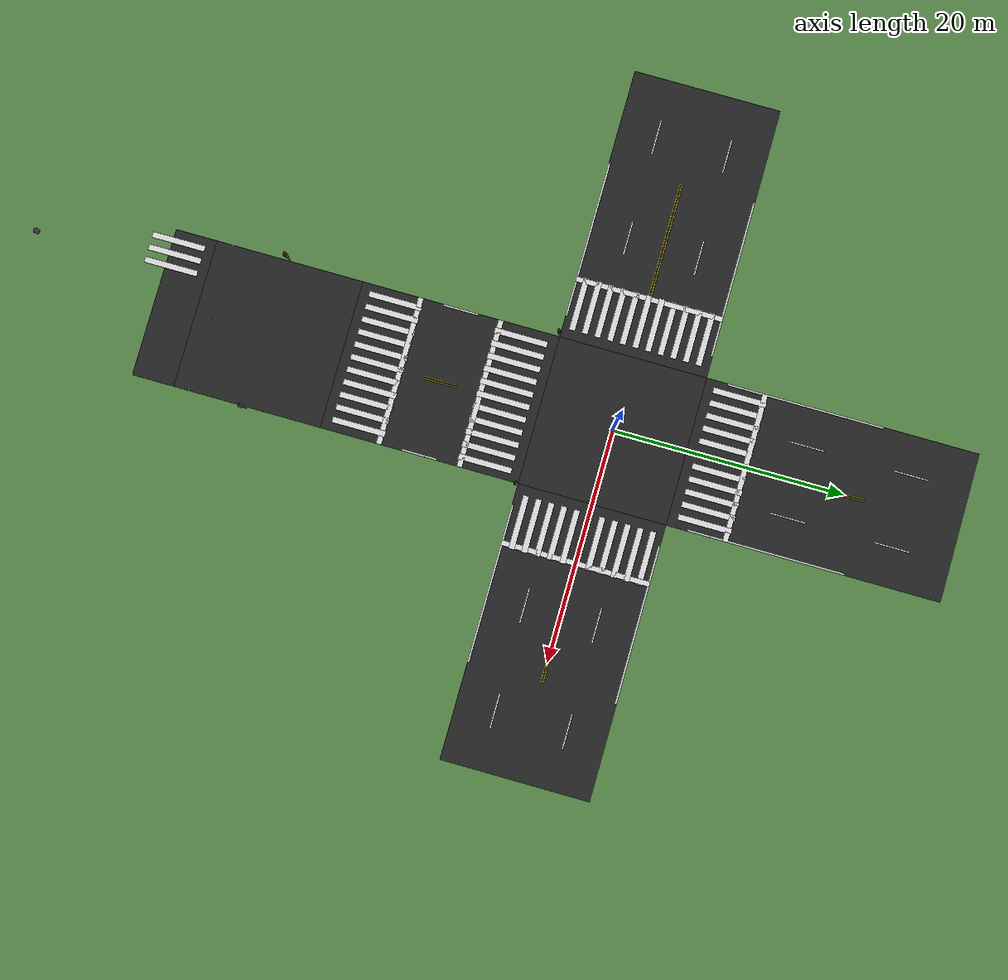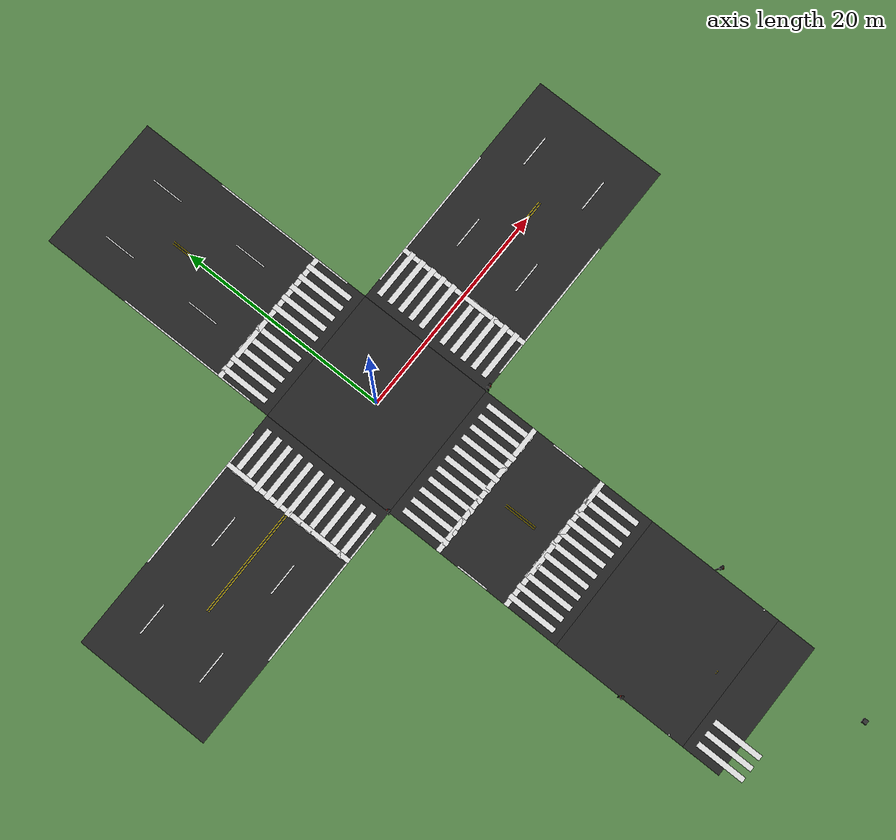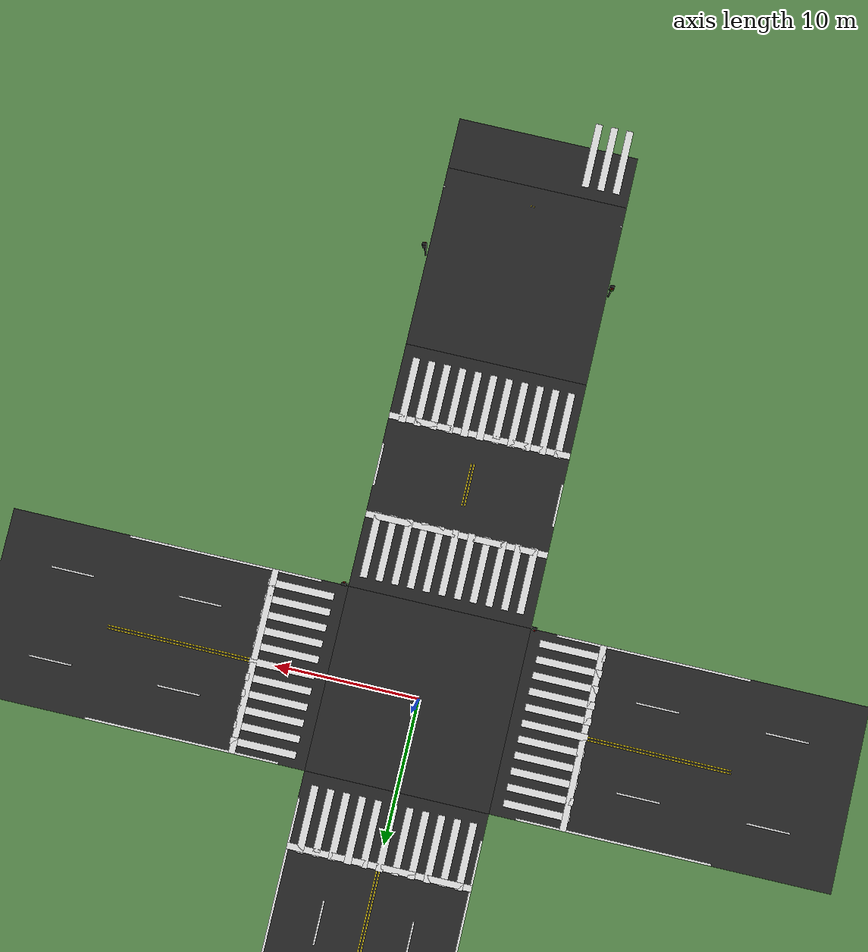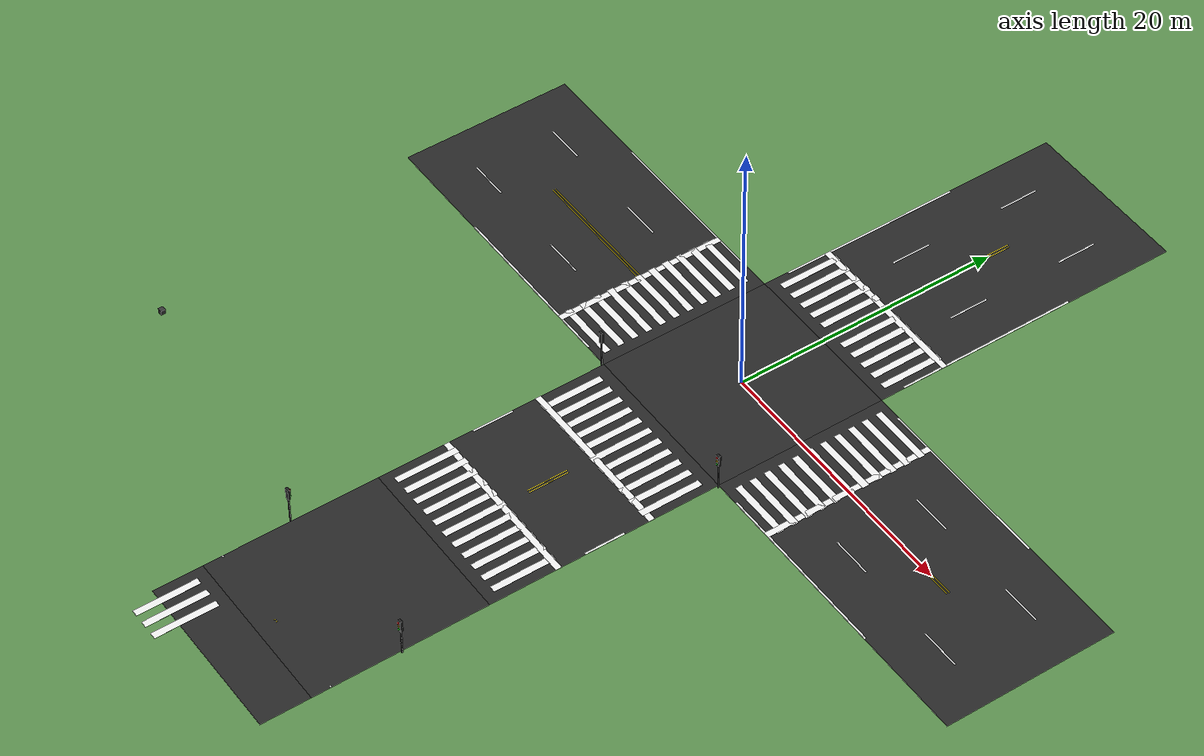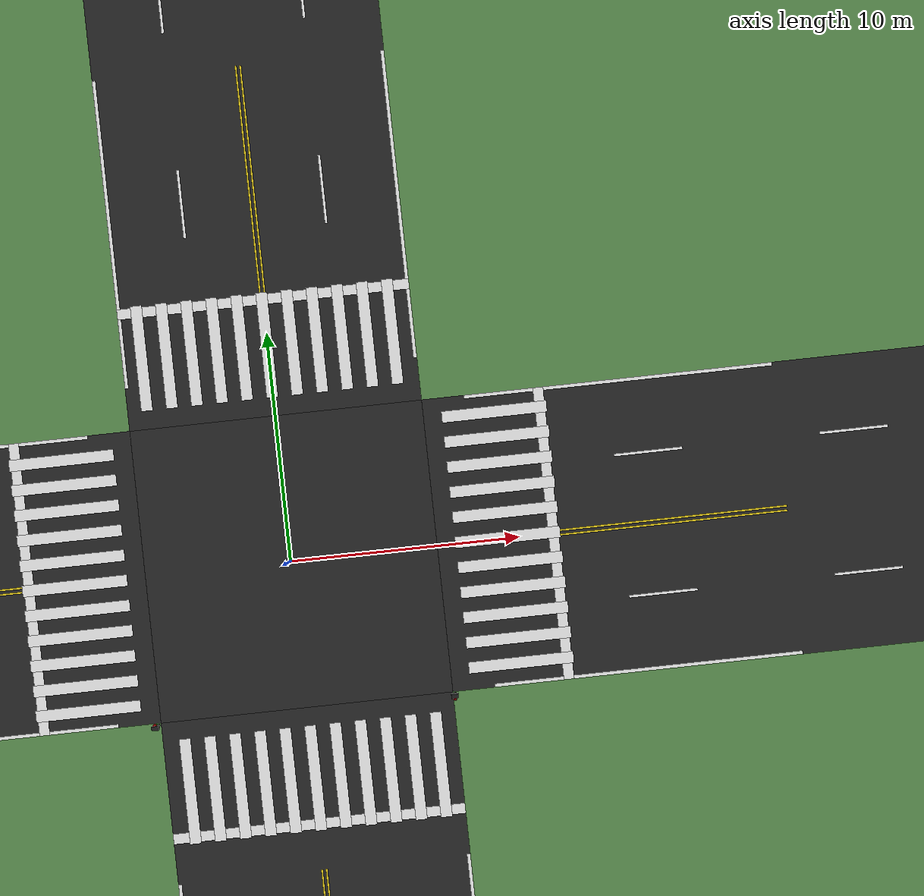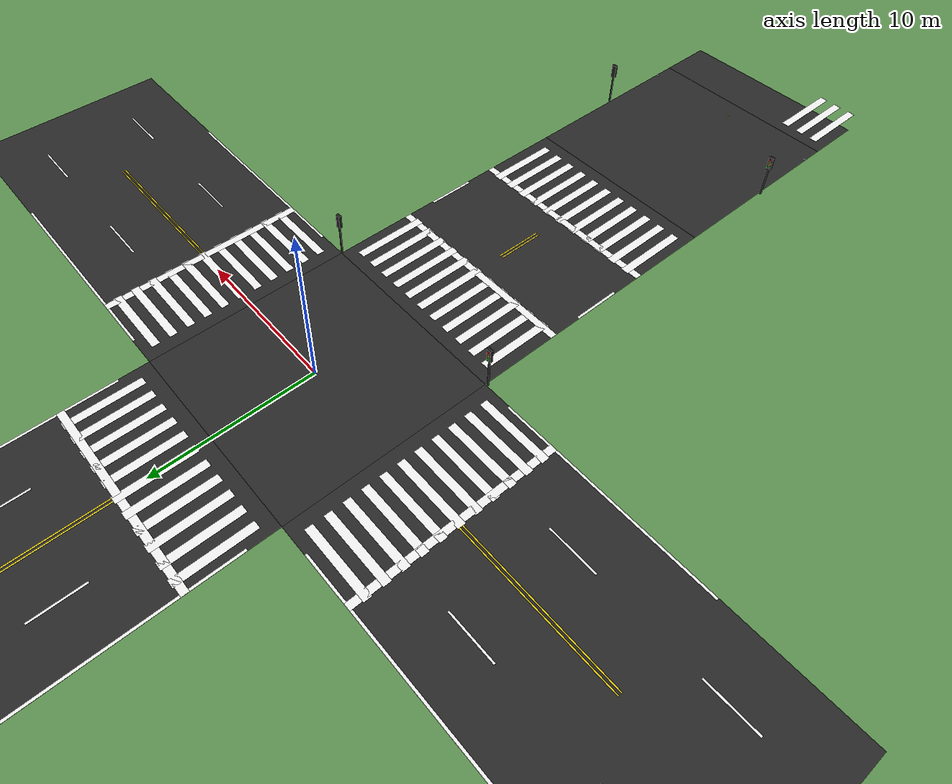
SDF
<sdf version="1.6">
 <world name="v2x_city">
  <model name="ground_plane">
   <static>true</static>
   <link name="link">
    <collision name="collision">
     <geometry><plane><normal>0 0 1</normal><size>300 300</size></plane></geometry>
     <surface><friction><ode><mu>100</mu><mu2>50</mu2></ode></friction></surface>
    </collision>
    <visual name="visual">
     <geometry><plane><normal>0 0 1</normal><size>300 300</size></plane></geometry>
     <material><ambient>0.35 0.55 0.3 1</ambient><diffuse>0.35 0.55 0.3 1</diffuse></material>
    </visual>
   </link>
  </model>
  <model name="road_NS-north">
   <static>true</static>
   <link name="link">
    <pose>0 18.2 0.02 0 0 1.5708</pose>
    <collision name="c">
     <geometry><box><size>23.6 12.8 0.02</size></box></geometry>
     <surface><friction><ode><mu>100</mu><mu2>50</mu2></ode></friction></surface>
    </collision>
    <visual name="v">
     <geometry><box><size>23.6 12.8 0.02</size></box></geometry>
     <material><ambient>0.15 0.15 0.15 1</ambient><diffuse>0.15 0.15 0.15 1</diffuse></material>
    </visual>
   </link>
  </model>
  <model name="median_NS-north_p">
   <static>true</static>
   <link name="link">
    <pose>-0.1 15 0.032 0 0 1.5708</pose>
    <visual name="v">
     <geometry><box><size>13.5 0.08 0.004</size></box></geometry>
     <material><ambient>0.9 0.8 0.1 1</ambient><diffuse>0.9 0.8 0.1 1</diffuse></material>
    </visual>
   </link>
  </model>
  <model name="median_NS-north_m">
   <static>true</static>
   <link name="link">
    <pose>0.1 15 0.032 0 0 1.5708</pose>
    <visual name="v">
     <geometry><box><size>13.5 0.08 0.004</size></box></geometry>
     <material><ambient>0.9 0.8 0.1 1</ambient><diffuse>0.9 0.8 0.1 1</diffuse></material>
    </visual>
   </link>
  </model>
  <model name="edge_NS-north_p">
   <static>true</static>
   <link name="link">
    <pose>-6.325 15 0.032 0 0 1.5708</pose>
    <visual name="v">
     <geometry><box><size>13.5 0.15 0.004</size></box></geometry>
     <material><ambient>0.92 0.92 0.92 1</ambient><diffuse>0.92 0.92 0.92 1</diffuse></material>
    </visual>
   </link>
  </model>
  <model name="edge_NS-north_m">
   <static>true</static>
   <link name="link">
    <pose>6.325 15 0.032 0 0 1.5708</pose>
    <visual name="v">
     <geometry><box><size>13.5 0.15 0.004</size></box></geometry>
     <material><ambient>0.92 0.92 0.92 1</ambient><diffuse>0.92 0.92 0.92 1</diffuse></material>
    </visual>
   </link>
  </model>
  <model name="dash_NS-north_1_p_0">
   <static>true</static>
   <link name="link">
    <pose>-3.1 16 0.032 0 0 1.5708</pose>
    <visual name="v">
     <geometry><box><size>3 0.12 0.004</size></box></geometry>
     <material><ambient>0.92 0.92 0.92 1</ambient><diffuse>0.92 0.92 0.92 1</diffuse></material>
    </visual>
   </link>
  </model>
  <model name="dash_NS-north_1_p_1">
   <static>true</static>
   <link name="link">
    <pose>-3.1 25 0.032 0 0 1.5708</pose>
    <visual name="v">
     <geometry><box><size>3 0.12 0.004</size></box></geometry>
     <material><ambient>0.92 0.92 0.92 1</ambient><diffuse>0.92 0.92 0.92 1</diffuse></material>
    </visual>
   </link>
  </model>
  <model name="dash_NS-north_1_m_0">
   <static>true</static>
   <link name="link">
    <pose>3.1 16 0.032 0 0 1.5708</pose>
    <visual name="v">
     <geometry><box><size>3 0.12 0.004</size></box></geometry>
     <material><ambient>0.92 0.92 0.92 1</ambient><diffuse>0.92 0.92 0.92 1</diffuse></material>
    </visual>
   </link>
  </model>
  <model name="dash_NS-north_1_m_1">
   <static>true</static>
   <link name="link">
    <pose>3.1 25 0.032 0 0 1.5708</pose>
    <visual name="v">
     <geometry><box><size>3 0.12 0.004</size></box></geometry>
     <material><ambient>0.92 0.92 0.92 1</ambient><diffuse>0.92 0.92 0.92 1</diffuse></material>
    </visual>
   </link>
  </model>
  <model name="road_NS-main">
   <static>true</static>
   <link name="link">
    <pose>0 -15 0.02 0 0 -1.5708</pose>
    <collision name="c">
     <geometry><box><size>17.2 12.8 0.02</size></box></geometry>
     <surface><friction><ode><mu>100</mu><mu2>50</mu2></ode></friction></surface>
    </collision>
    <visual name="v">
     <geometry><box><size>17.2 12.8 0.02</size></box></geometry>
     <material><ambient>0.15 0.15 0.15 1</ambient><diffuse>0.15 0.15 0.15 1</diffuse></material>
    </visual>
   </link>
  </model>
  <model name="median_NS-main_p">
   <static>true</static>
   <link name="link">
    <pose>0.1 -15 0.032 0 0 -1.5708</pose>
    <visual name="v">
     <geometry><box><size>3 0.08 0.004</size></box></geometry>
     <material><ambient>0.9 0.8 0.1 1</ambient><diffuse>0.9 0.8 0.1 1</diffuse></material>
    </visual>
   </link>
  </model>
  <model name="median_NS-main_m">
   <static>true</static>
   <link name="link">
    <pose>-0.1 -15 0.032 0 0 -1.5708</pose>
    <visual name="v">
     <geometry><box><size>3 0.08 0.004</size></box></geometry>
     <material><ambient>0.9 0.8 0.1 1</ambient><diffuse>0.9 0.8 0.1 1</diffuse></material>
    </visual>
   </link>
  </model>
  <model name="edge_NS-main_p">
   <static>true</static>
   <link name="link">
    <pose>6.325 -15 0.032 0 0 -1.5708</pose>
    <visual name="v">
     <geometry><box><size>3 0.15 0.004</size></box></geometry>
     <material><ambient>0.92 0.92 0.92 1</ambient><diffuse>0.92 0.92 0.92 1</diffuse></material>
    </visual>
   </link>
  </model>
  <model name="edge_NS-main_m">
   <static>true</static>
   <link name="link">
    <pose>-6.325 -15 0.032 0 0 -1.5708</pose>
    <visual name="v">
     <geometry><box><size>3 0.15 0.004</size></box></geometry>
     <material><ambient>0.92 0.92 0.92 1</ambient><diffuse>0.92 0.92 0.92 1</diffuse></material>
    </visual>
   </link>
  </model>
  <model name="road_NS-school">
   <static>true</static>
   <link name="link">
    <pose>0 -38.2 0.02 0 0 -1.5708</pose>
    <collision name="c">
     <geometry><box><size>3.6 12.8 0.02</size></box></geometry>
     <surface><friction><ode><mu>100</mu><mu2>50</mu2></ode></friction></surface>
    </collision>
    <visual name="v">
     <geometry><box><size>3.6 12.8 0.02</size></box></geometry>
     <material><ambient>0.15 0.15 0.15 1</ambient><diffuse>0.15 0.15 0.15 1</diffuse></material>
    </visual>
   </link>
  </model>
  <model name="median_NS-school_p">
   <static>true</static>
   <link name="link">
    <pose>0.1 -35 0.032 0 0 -1.5708</pose>
    <visual name="v">
     <geometry><box><size>0.1 0.08 0.004</size></box></geometry>
     <material><ambient>0.9 0.8 0.1 1</ambient><diffuse>0.9 0.8 0.1 1</diffuse></material>
    </visual>
   </link>
  </model>
  <model name="median_NS-school_m">
   <static>true</static>
   <link name="link">
    <pose>-0.1 -35 0.032 0 0 -1.5708</pose>
    <visual name="v">
     <geometry><box><size>0.1 0.08 0.004</size></box></geometry>
     <material><ambient>0.9 0.8 0.1 1</ambient><diffuse>0.9 0.8 0.1 1</diffuse></material>
    </visual>
   </link>
  </model>
  <model name="edge_NS-school_p">
   <static>true</static>
   <link name="link">
    <pose>6.325 -35 0.032 0 0 -1.5708</pose>
    <visual name="v">
     <geometry><box><size>0.1 0.15 0.004</size></box></geometry>
     <material><ambient>0.92 0.92 0.92 1</ambient><diffuse>0.92 0.92 0.92 1</diffuse></material>
    </visual>
   </link>
  </model>
  <model name="edge_NS-school_m">
   <static>true</static>
   <link name="link">
    <pose>-6.325 -35 0.032 0 0 -1.5708</pose>
    <visual name="v">
     <geometry><box><size>0.1 0.15 0.004</size></box></geometry>
     <material><ambient>0.92 0.92 0.92 1</ambient><diffuse>0.92 0.92 0.92 1</diffuse></material>
    </visual>
   </link>
  </model>
  <model name="road_EW-east">
   <static>true</static>
   <link name="link">
    <pose>18.2 0 0.02 0 0 0</pose>
    <collision name="c">
     <geometry><box><size>23.6 12.8 0.02</size></box></geometry>
     <surface><friction><ode><mu>100</mu><mu2>50</mu2></ode></friction></surface>
    </collision>
    <visual name="v">
     <geometry><box><size>23.6 12.8 0.02</size></box></geometry>
     <material><ambient>0.15 0.15 0.15 1</ambient><diffuse>0.15 0.15 0.15 1</diffuse></material>
    </visual>
   </link>
  </model>
  <model name="median_EW-east_p">
   <static>true</static>
   <link name="link">
    <pose>15 0.1 0.032 0 0 0</pose>
    <visual name="v">
     <geometry><box><size>13.5 0.08 0.004</size></box></geometry>
     <material><ambient>0.9 0.8 0.1 1</ambient><diffuse>0.9 0.8 0.1 1</diffuse></material>
    </visual>
   </link>
  </model>
  <model name="median_EW-east_m">
   <static>true</static>
   <link name="link">
    <pose>15 -0.1 0.032 0 0 0</pose>
    <visual name="v">
     <geometry><box><size>13.5 0.08 0.004</size></box></geometry>
     <material><ambient>0.9 0.8 0.1 1</ambient><diffuse>0.9 0.8 0.1 1</diffuse></material>
    </visual>
   </link>
  </model>
  <model name="edge_EW-east_p">
   <static>true</static>
   <link name="link">
    <pose>15 6.325 0.032 0 0 0</pose>
    <visual name="v">
     <geometry><box><size>13.5 0.15 0.004</size></box></geometry>
     <material><ambient>0.92 0.92 0.92 1</ambient><diffuse>0.92 0.92 0.92 1</diffuse></material>
    </visual>
   </link>
  </model>
  <model name="edge_EW-east_m">
   <static>true</static>
   <link name="link">
    <pose>15 -6.325 0.032 0 0 0</pose>
    <visual name="v">
     <geometry><box><size>13.5 0.15 0.004</size></box></geometry>
     <material><ambient>0.92 0.92 0.92 1</ambient><diffuse>0.92 0.92 0.92 1</diffuse></material>
    </visual>
   </link>
  </model>
  <model name="dash_EW-east_1_p_0">
   <static>true</static>
   <link name="link">
    <pose>16 3.1 0.032 0 0 0</pose>
    <visual name="v">
     <geometry><box><size>3 0.12 0.004</size></box></geometry>
     <material><ambient>0.92 0.92 0.92 1</ambient><diffuse>0.92 0.92 0.92 1</diffuse></material>
    </visual>
   </link>
  </model>
  <model name="dash_EW-east_1_p_1">
   <static>true</static>
   <link name="link">
    <pose>25 3.1 0.032 0 0 0</pose>
    <visual name="v">
     <geometry><box><size>3 0.12 0.004</size></box></geometry>
     <material><ambient>0.92 0.92 0.92 1</ambient><diffuse>0.92 0.92 0.92 1</diffuse></material>
    </visual>
   </link>
  </model>
  <model name="dash_EW-east_1_m_0">
   <static>true</static>
   <link name="link">
    <pose>16 -3.1 0.032 0 0 0</pose>
    <visual name="v">
     <geometry><box><size>3 0.12 0.004</size></box></geometry>
     <material><ambient>0.92 0.92 0.92 1</ambient><diffuse>0.92 0.92 0.92 1</diffuse></material>
    </visual>
   </link>
  </model>
  <model name="dash_EW-east_1_m_1">
   <static>true</static>
   <link name="link">
    <pose>25 -3.1 0.032 0 0 0</pose>
    <visual name="v">
     <geometry><box><size>3 0.12 0.004</size></box></geometry>
     <material><ambient>0.92 0.92 0.92 1</ambient><diffuse>0.92 0.92 0.92 1</diffuse></material>
    </visual>
   </link>
  </model>
  <model name="road_EW-west">
   <static>true</static>
   <link name="link">
    <pose>-18.2 0 0.02 0 0 3.1416</pose>
    <collision name="c">
     <geometry><box><size>23.6 12.8 0.02</size></box></geometry>
     <surface><friction><ode><mu>100</mu><mu2>50</mu2></ode></friction></surface>
    </collision>
    <visual name="v">
     <geometry><box><size>23.6 12.8 0.02</size></box></geometry>
     <material><ambient>0.15 0.15 0.15 1</ambient><diffuse>0.15 0.15 0.15 1</diffuse></material>
    </visual>
   </link>
  </model>
  <model name="median_EW-west_p">
   <static>true</static>
   <link name="link">
    <pose>-15 -0.1 0.032 0 0 3.1416</pose>
    <visual name="v">
     <geometry><box><size>13.5 0.08 0.004</size></box></geometry>
     <material><ambient>0.9 0.8 0.1 1</ambient><diffuse>0.9 0.8 0.1 1</diffuse></material>
    </visual>
   </link>
  </model>
  <model name="median_EW-west_m">
   <static>true</static>
   <link name="link">
    <pose>-15 0.1 0.032 0 0 3.1416</pose>
    <visual name="v">
     <geometry><box><size>13.5 0.08 0.004</size></box></geometry>
     <material><ambient>0.9 0.8 0.1 1</ambient><diffuse>0.9 0.8 0.1 1</diffuse></material>
    </visual>
   </link>
  </model>
  <model name="edge_EW-west_p">
   <static>true</static>
   <link name="link">
    <pose>-15 -6.325 0.032 0 0 3.1416</pose>
    <visual name="v">
     <geometry><box><size>13.5 0.15 0.004</size></box></geometry>
     <material><ambient>0.92 0.92 0.92 1</ambient><diffuse>0.92 0.92 0.92 1</diffuse></material>
    </visual>
   </link>
  </model>
  <model name="edge_EW-west_m">
   <static>true</static>
   <link name="link">
    <pose>-15 6.325 0.032 0 0 3.1416</pose>
    <visual name="v">
     <geometry><box><size>13.5 0.15 0.004</size></box></geometry>
     <material><ambient>0.92 0.92 0.92 1</ambient><diffuse>0.92 0.92 0.92 1</diffuse></material>
    </visual>
   </link>
  </model>
  <model name="dash_EW-west_1_p_0">
   <static>true</static>
   <link name="link">
    <pose>-16 -3.1 0.032 0 0 3.1416</pose>
    <visual name="v">
     <geometry><box><size>3 0.12 0.004</size></box></geometry>
     <material><ambient>0.92 0.92 0.92 1</ambient><diffuse>0.92 0.92 0.92 1</diffuse></material>
    </visual>
   </link>
  </model>
  <model name="dash_EW-west_1_p_1">
   <static>true</static>
   <link name="link">
    <pose>-25 -3.1 0.032 0 0 3.1416</pose>
    <visual name="v">
     <geometry><box><size>3 0.12 0.004</size></box></geometry>
     <material><ambient>0.92 0.92 0.92 1</ambient><diffuse>0.92 0.92 0.92 1</diffuse></material>
    </visual>
   </link>
  </model>
  <model name="dash_EW-west_1_m_0">
   <static>true</static>
   <link name="link">
    <pose>-16 3.1 0.032 0 0 3.1416</pose>
    <visual name="v">
     <geometry><box><size>3 0.12 0.004</size></box></geometry>
     <material><ambient>0.92 0.92 0.92 1</ambient><diffuse>0.92 0.92 0.92 1</diffuse></material>
    </visual>
   </link>
  </model>
  <model name="dash_EW-west_1_m_1">
   <static>true</static>
   <link name="link">
    <pose>-25 3.1 0.032 0 0 3.1416</pose>
    <visual name="v">
     <geometry><box><size>3 0.12 0.004</size></box></geometry>
     <material><ambient>0.92 0.92 0.92 1</ambient><diffuse>0.92 0.92 0.92 1</diffuse></material>
    </visual>
   </link>
  </model>
  <model name="junction_J1">
   <static>true</static>
   <link name="link">
    <pose>0 0 0.02 0 0 0</pose>
    <collision name="c">
     <geometry><box><size>12.8 12.8 0.02</size></box></geometry>
     <surface><friction><ode><mu>100</mu><mu2>50</mu2></ode></friction></surface>
    </collision>
    <visual name="v">
     <geometry><box><size>12.8 12.8 0.02</size></box></geometry>
     <material><ambient>0.15 0.15 0.15 1</ambient><diffuse>0.15 0.15 0.15 1</diffuse></material>
    </visual>
   </link>
  </model>
  <model name="junction_J2">
   <static>true</static>
   <link name="link">
    <pose>0 -30 0.02 0 0 0</pose>
    <collision name="c">
     <geometry><box><size>12.8 12.8 0.02</size></box></geometry>
     <surface><friction><ode><mu>100</mu><mu2>50</mu2></ode></friction></surface>
    </collision>
    <visual name="v">
     <geometry><box><size>12.8 12.8 0.02</size></box></geometry>
     <material><ambient>0.15 0.15 0.15 1</ambient><diffuse>0.15 0.15 0.15 1</diffuse></material>
    </visual>
   </link>
  </model>
  <model name="zebra_J1_NS-north_0">
   <static>true</static>
   <link name="link">
    <pose>5.45 9.5 0.034 0 0 1.5708</pose>
    <visual name="v">
     <geometry><box><size>4.6 0.5 0.004</size></box></geometry>
     <material><ambient>0.92 0.92 0.92 1</ambient><diffuse>0.92 0.92 0.92 1</diffuse></material>
    </visual>
   </link>
  </model>
  <model name="zebra_J1_NS-north_1">
   <static>true</static>
   <link name="link">
    <pose>4.35 9.5 0.034 0 0 1.5708</pose>
    <visual name="v">
     <geometry><box><size>4.6 0.5 0.004</size></box></geometry>
     <material><ambient>0.92 0.92 0.92 1</ambient><diffuse>0.92 0.92 0.92 1</diffuse></material>
    </visual>
   </link>
  </model>
  <model name="zebra_J1_NS-north_2">
   <static>true</static>
   <link name="link">
    <pose>3.25 9.5 0.034 0 0 1.5708</pose>
    <visual name="v">
     <geometry><box><size>4.6 0.5 0.004</size></box></geometry>
     <material><ambient>0.92 0.92 0.92 1</ambient><diffuse>0.92 0.92 0.92 1</diffuse></material>
    </visual>
   </link>
  </model>
  <model name="zebra_J1_NS-north_3">
   <static>true</static>
   <link name="link">
    <pose>2.15 9.5 0.034 0 0 1.5708</pose>
    <visual name="v">
     <geometry><box><size>4.6 0.5 0.004</size></box></geometry>
     <material><ambient>0.92 0.92 0.92 1</ambient><diffuse>0.92 0.92 0.92 1</diffuse></material>
    </visual>
   </link>
  </model>
  <model name="zebra_J1_NS-north_4">
   <static>true</static>
   <link name="link">
    <pose>1.05 9.5 0.034 0 0 1.5708</pose>
    <visual name="v">
     <geometry><box><size>4.6 0.5 0.004</size></box></geometry>
     <material><ambient>0.92 0.92 0.92 1</ambient><diffuse>0.92 0.92 0.92 1</diffuse></material>
    </visual>
   </link>
  </model>
  <model name="zebra_J1_NS-north_5">
   <static>true</static>
   <link name="link">
    <pose>-0.05 9.5 0.034 0 0 1.5708</pose>
    <visual name="v">
     <geometry><box><size>4.6 0.5 0.004</size></box></geometry>
     <material><ambient>0.92 0.92 0.92 1</ambient><diffuse>0.92 0.92 0.92 1</diffuse></material>
    </visual>
   </link>
  </model>
  <model name="zebra_J1_NS-north_6">
   <static>true</static>
   <link name="link">
    <pose>-1.15 9.5 0.034 0 0 1.5708</pose>
    <visual name="v">
     <geometry><box><size>4.6 0.5 0.004</size></box></geometry>
     <material><ambient>0.92 0.92 0.92 1</ambient><diffuse>0.92 0.92 0.92 1</diffuse></material>
    </visual>
   </link>
  </model>
  <model name="zebra_J1_NS-north_7">
   <static>true</static>
   <link name="link">
    <pose>-2.25 9.5 0.034 0 0 1.5708</pose>
    <visual name="v">
     <geometry><box><size>4.6 0.5 0.004</size></box></geometry>
     <material><ambient>0.92 0.92 0.92 1</ambient><diffuse>0.92 0.92 0.92 1</diffuse></material>
    </visual>
   </link>
  </model>
  <model name="zebra_J1_NS-north_8">
   <static>true</static>
   <link name="link">
    <pose>-3.35 9.5 0.034 0 0 1.5708</pose>
    <visual name="v">
     <geometry><box><size>4.6 0.5 0.004</size></box></geometry>
     <material><ambient>0.92 0.92 0.92 1</ambient><diffuse>0.92 0.92 0.92 1</diffuse></material>
    </visual>
   </link>
  </model>
  <model name="zebra_J1_NS-north_9">
   <static>true</static>
   <link name="link">
    <pose>-4.45 9.5 0.034 0 0 1.5708</pose>
    <visual name="v">
     <geometry><box><size>4.6 0.5 0.004</size></box></geometry>
     <material><ambient>0.92 0.92 0.92 1</ambient><diffuse>0.92 0.92 0.92 1</diffuse></material>
    </visual>
   </link>
  </model>
  <model name="zebra_J1_NS-north_10">
   <static>true</static>
   <link name="link">
    <pose>-5.55 9.5 0.034 0 0 1.5708</pose>
    <visual name="v">
     <geometry><box><size>4.6 0.5 0.004</size></box></geometry>
     <material><ambient>0.92 0.92 0.92 1</ambient><diffuse>0.92 0.92 0.92 1</diffuse></material>
    </visual>
   </link>
  </model>
  <model name="stopline_J1_NS-north_p">
   <static>true</static>
   <link name="link">
    <pose>-3.25 11.5 0.034 0 0 1.5708</pose>
    <visual name="v">
     <geometry><box><size>0.45 6.3 0.004</size></box></geometry>
     <material><ambient>0.92 0.92 0.92 1</ambient><diffuse>0.92 0.92 0.92 1</diffuse></material>
    </visual>
   </link>
  </model>
  <model name="stopline_J1_NS-north_m">
   <static>true</static>
   <link name="link">
    <pose>3.25 11.5 0.034 0 0 1.5708</pose>
    <visual name="v">
     <geometry><box><size>0.45 6.3 0.004</size></box></geometry>
     <material><ambient>0.92 0.92 0.92 1</ambient><diffuse>0.92 0.92 0.92 1</diffuse></material>
    </visual>
   </link>
  </model>
  <model name="zebra_J1_NS-main_0">
   <static>true</static>
   <link name="link">
    <pose>-5.45 -9.5 0.034 0 0 -1.5708</pose>
    <visual name="v">
     <geometry><box><size>4.6 0.5 0.004</size></box></geometry>
     <material><ambient>0.92 0.92 0.92 1</ambient><diffuse>0.92 0.92 0.92 1</diffuse></material>
    </visual>
   </link>
  </model>
  <model name="zebra_J1_NS-main_1">
   <static>true</static>
   <link name="link">
    <pose>-4.35 -9.5 0.034 0 0 -1.5708</pose>
    <visual name="v">
     <geometry><box><size>4.6 0.5 0.004</size></box></geometry>
     <material><ambient>0.92 0.92 0.92 1</ambient><diffuse>0.92 0.92 0.92 1</diffuse></material>
    </visual>
   </link>
  </model>
  <model name="zebra_J1_NS-main_2">
   <static>true</static>
   <link name="link">
    <pose>-3.25 -9.5 0.034 0 0 -1.5708</pose>
    <visual name="v">
     <geometry><box><size>4.6 0.5 0.004</size></box></geometry>
     <material><ambient>0.92 0.92 0.92 1</ambient><diffuse>0.92 0.92 0.92 1</diffuse></material>
    </visual>
   </link>
  </model>
  <model name="zebra_J1_NS-main_3">
   <static>true</static>
   <link name="link">
    <pose>-2.15 -9.5 0.034 0 0 -1.5708</pose>
    <visual name="v">
     <geometry><box><size>4.6 0.5 0.004</size></box></geometry>
     <material><ambient>0.92 0.92 0.92 1</ambient><diffuse>0.92 0.92 0.92 1</diffuse></material>
    </visual>
   </link>
  </model>
  <model name="zebra_J1_NS-main_4">
   <static>true</static>
   <link name="link">
    <pose>-1.05 -9.5 0.034 0 0 -1.5708</pose>
    <visual name="v">
     <geometry><box><size>4.6 0.5 0.004</size></box></geometry>
     <material><ambient>0.92 0.92 0.92 1</ambient><diffuse>0.92 0.92 0.92 1</diffuse></material>
    </visual>
   </link>
  </model>
  <model name="zebra_J1_NS-main_5">
   <static>true</static>
   <link name="link">
    <pose>0.05 -9.5 0.034 0 0 -1.5708</pose>
    <visual name="v">
     <geometry><box><size>4.6 0.5 0.004</size></box></geometry>
     <material><ambient>0.92 0.92 0.92 1</ambient><diffuse>0.92 0.92 0.92 1</diffuse></material>
    </visual>
   </link>
  </model>
  <model name="zebra_J1_NS-main_6">
   <static>true</static>
   <link name="link">
    <pose>1.15 -9.5 0.034 0 0 -1.5708</pose>
    <visual name="v">
     <geometry><box><size>4.6 0.5 0.004</size></box></geometry>
     <material><ambient>0.92 0.92 0.92 1</ambient><diffuse>0.92 0.92 0.92 1</diffuse></material>
    </visual>
   </link>
  </model>
  <model name="zebra_J1_NS-main_7">
   <static>true</static>
   <link name="link">
    <pose>2.25 -9.5 0.034 0 0 -1.5708</pose>
    <visual name="v">
     <geometry><box><size>4.6 0.5 0.004</size></box></geometry>
     <material><ambient>0.92 0.92 0.92 1</ambient><diffuse>0.92 0.92 0.92 1</diffuse></material>
    </visual>
   </link>
  </model>
  <model name="zebra_J1_NS-main_8">
   <static>true</static>
   <link name="link">
    <pose>3.35 -9.5 0.034 0 0 -1.5708</pose>
    <visual name="v">
     <geometry><box><size>4.6 0.5 0.004</size></box></geometry>
     <material><ambient>0.92 0.92 0.92 1</ambient><diffuse>0.92 0.92 0.92 1</diffuse></material>
    </visual>
   </link>
  </model>
  <model name="zebra_J1_NS-main_9">
   <static>true</static>
   <link name="link">
    <pose>4.45 -9.5 0.034 0 0 -1.5708</pose>
    <visual name="v">
     <geometry><box><size>4.6 0.5 0.004</size></box></geometry>
     <material><ambient>0.92 0.92 0.92 1</ambient><diffuse>0.92 0.92 0.92 1</diffuse></material>
    </visual>
   </link>
  </model>
  <model name="zebra_J1_NS-main_10">
   <static>true</static>
   <link name="link">
    <pose>5.55 -9.5 0.034 0 0 -1.5708</pose>
    <visual name="v">
     <geometry><box><size>4.6 0.5 0.004</size></box></geometry>
     <material><ambient>0.92 0.92 0.92 1</ambient><diffuse>0.92 0.92 0.92 1</diffuse></material>
    </visual>
   </link>
  </model>
  <model name="stopline_J1_NS-main_p">
   <static>true</static>
   <link name="link">
    <pose>3.25 -11.5 0.034 0 0 -1.5708</pose>
    <visual name="v">
     <geometry><box><size>0.45 6.3 0.004</size></box></geometry>
     <material><ambient>0.92 0.92 0.92 1</ambient><diffuse>0.92 0.92 0.92 1</diffuse></material>
    </visual>
   </link>
  </model>
  <model name="stopline_J1_NS-main_m">
   <static>true</static>
   <link name="link">
    <pose>-3.25 -11.5 0.034 0 0 -1.5708</pose>
    <visual name="v">
     <geometry><box><size>0.45 6.3 0.004</size></box></geometry>
     <material><ambient>0.92 0.92 0.92 1</ambient><diffuse>0.92 0.92 0.92 1</diffuse></material>
    </visual>
   </link>
  </model>
  <model name="zebra_J1_EW-east_0">
   <static>true</static>
   <link name="link">
    <pose>9.5 -5.45 0.034 0 0 0</pose>
    <visual name="v">
     <geometry><box><size>4.6 0.5 0.004</size></box></geometry>
     <material><ambient>0.92 0.92 0.92 1</ambient><diffuse>0.92 0.92 0.92 1</diffuse></material>
    </visual>
   </link>
  </model>
  <model name="zebra_J1_EW-east_1">
   <static>true</static>
   <link name="link">
    <pose>9.5 -4.35 0.034 0 0 0</pose>
    <visual name="v">
     <geometry><box><size>4.6 0.5 0.004</size></box></geometry>
     <material><ambient>0.92 0.92 0.92 1</ambient><diffuse>0.92 0.92 0.92 1</diffuse></material>
    </visual>
   </link>
  </model>
  <model name="zebra_J1_EW-east_2">
   <static>true</static>
   <link name="link">
    <pose>9.5 -3.25 0.034 0 0 0</pose>
    <visual name="v">
     <geometry><box><size>4.6 0.5 0.004</size></box></geometry>
     <material><ambient>0.92 0.92 0.92 1</ambient><diffuse>0.92 0.92 0.92 1</diffuse></material>
    </visual>
   </link>
  </model>
  <model name="zebra_J1_EW-east_3">
   <static>true</static>
   <link name="link">
    <pose>9.5 -2.15 0.034 0 0 0</pose>
    <visual name="v">
     <geometry><box><size>4.6 0.5 0.004</size></box></geometry>
     <material><ambient>0.92 0.92 0.92 1</ambient><diffuse>0.92 0.92 0.92 1</diffuse></material>
    </visual>
   </link>
  </model>
  <model name="zebra_J1_EW-east_4">
   <static>true</static>
   <link name="link">
    <pose>9.5 -1.05 0.034 0 0 0</pose>
    <visual name="v">
     <geometry><box><size>4.6 0.5 0.004</size></box></geometry>
     <material><ambient>0.92 0.92 0.92 1</ambient><diffuse>0.92 0.92 0.92 1</diffuse></material>
    </visual>
   </link>
  </model>
  <model name="zebra_J1_EW-east_5">
   <static>true</static>
   <link name="link">
    <pose>9.5 0.05 0.034 0 0 0</pose>
    <visual name="v">
     <geometry><box><size>4.6 0.5 0.004</size></box></geometry>
     <material><ambient>0.92 0.92 0.92 1</ambient><diffuse>0.92 0.92 0.92 1</diffuse></material>
    </visual>
   </link>
  </model>
  <model name="zebra_J1_EW-east_6">
   <static>true</static>
   <link name="link">
    <pose>9.5 1.15 0.034 0 0 0</pose>
    <visual name="v">
     <geometry><box><size>4.6 0.5 0.004</size></box></geometry>
     <material><ambient>0.92 0.92 0.92 1</ambient><diffuse>0.92 0.92 0.92 1</diffuse></material>
    </visual>
   </link>
  </model>
  <model name="zebra_J1_EW-east_7">
   <static>true</static>
   <link name="link">
    <pose>9.5 2.25 0.034 0 0 0</pose>
    <visual name="v">
     <geometry><box><size>4.6 0.5 0.004</size></box></geometry>
     <material><ambient>0.92 0.92 0.92 1</ambient><diffuse>0.92 0.92 0.92 1</diffuse></material>
    </visual>
   </link>
  </model>
  <model name="zebra_J1_EW-east_8">
   <static>true</static>
   <link name="link">
    <pose>9.5 3.35 0.034 0 0 0</pose>
    <visual name="v">
     <geometry><box><size>4.6 0.5 0.004</size></box></geometry>
     <material><ambient>0.92 0.92 0.92 1</ambient><diffuse>0.92 0.92 0.92 1</diffuse></material>
    </visual>
   </link>
  </model>
  <model name="zebra_J1_EW-east_9">
   <static>true</static>
   <link name="link">
    <pose>9.5 4.45 0.034 0 0 0</pose>
    <visual name="v">
     <geometry><box><size>4.6 0.5 0.004</size></box></geometry>
     <material><ambient>0.92 0.92 0.92 1</ambient><diffuse>0.92 0.92 0.92 1</diffuse></material>
    </visual>
   </link>
  </model>
  <model name="zebra_J1_EW-east_10">
   <static>true</static>
   <link name="link">
    <pose>9.5 5.55 0.034 0 0 0</pose>
    <visual name="v">
     <geometry><box><size>4.6 0.5 0.004</size></box></geometry>
     <material><ambient>0.92 0.92 0.92 1</ambient><diffuse>0.92 0.92 0.92 1</diffuse></material>
    </visual>
   </link>
  </model>
  <model name="stopline_J1_EW-east_p">
   <static>true</static>
   <link name="link">
    <pose>11.5 3.25 0.034 0 0 0</pose>
    <visual name="v">
     <geometry><box><size>0.45 6.3 0.004</size></box></geometry>
     <material><ambient>0.92 0.92 0.92 1</ambient><diffuse>0.92 0.92 0.92 1</diffuse></material>
    </visual>
   </link>
  </model>
  <model name="stopline_J1_EW-east_m">
   <static>true</static>
   <link name="link">
    <pose>11.5 -3.25 0.034 0 0 0</pose>
    <visual name="v">
     <geometry><box><size>0.45 6.3 0.004</size></box></geometry>
     <material><ambient>0.92 0.92 0.92 1</ambient><diffuse>0.92 0.92 0.92 1</diffuse></material>
    </visual>
   </link>
  </model>
  <model name="zebra_J1_EW-west_0">
   <static>true</static>
   <link name="link">
    <pose>-9.5 5.45 0.034 0 0 3.1416</pose>
    <visual name="v">
     <geometry><box><size>4.6 0.5 0.004</size></box></geometry>
     <material><ambient>0.92 0.92 0.92 1</ambient><diffuse>0.92 0.92 0.92 1</diffuse></material>
    </visual>
   </link>
  </model>
  <model name="zebra_J1_EW-west_1">
   <static>true</static>
   <link name="link">
    <pose>-9.5 4.35 0.034 0 0 3.1416</pose>
    <visual name="v">
     <geometry><box><size>4.6 0.5 0.004</size></box></geometry>
     <material><ambient>0.92 0.92 0.92 1</ambient><diffuse>0.92 0.92 0.92 1</diffuse></material>
    </visual>
   </link>
  </model>
  <model name="zebra_J1_EW-west_2">
   <static>true</static>
   <link name="link">
    <pose>-9.5 3.25 0.034 0 0 3.1416</pose>
    <visual name="v">
     <geometry><box><size>4.6 0.5 0.004</size></box></geometry>
     <material><ambient>0.92 0.92 0.92 1</ambient><diffuse>0.92 0.92 0.92 1</diffuse></material>
    </visual>
   </link>
  </model>
  <model name="zebra_J1_EW-west_3">
   <static>true</static>
   <link name="link">
    <pose>-9.5 2.15 0.034 0 0 3.1416</pose>
    <visual name="v">
     <geometry><box><size>4.6 0.5 0.004</size></box></geometry>
     <material><ambient>0.92 0.92 0.92 1</ambient><diffuse>0.92 0.92 0.92 1</diffuse></material>
    </visual>
   </link>
  </model>
  <model name="zebra_J1_EW-west_4">
   <static>true</static>
   <link name="link">
    <pose>-9.5 1.05 0.034 0 0 3.1416</pose>
    <visual name="v">
     <geometry><box><size>4.6 0.5 0.004</size></box></geometry>
     <material><ambient>0.92 0.92 0.92 1</ambient><diffuse>0.92 0.92 0.92 1</diffuse></material>
    </visual>
   </link>
  </model>
  <model name="zebra_J1_EW-west_5">
   <static>true</static>
   <link name="link">
    <pose>-9.5 -0.05 0.034 0 0 3.1416</pose>
    <visual name="v">
     <geometry><box><size>4.6 0.5 0.004</size></box></geometry>
     <material><ambient>0.92 0.92 0.92 1</ambient><diffuse>0.92 0.92 0.92 1</diffuse></material>
    </visual>
   </link>
  </model>
  <model name="zebra_J1_EW-west_6">
   <static>true</static>
   <link name="link">
    <pose>-9.5 -1.15 0.034 0 0 3.1416</pose>
    <visual name="v">
     <geometry><box><size>4.6 0.5 0.004</size></box></geometry>
     <material><ambient>0.92 0.92 0.92 1</ambient><diffuse>0.92 0.92 0.92 1</diffuse></material>
    </visual>
   </link>
  </model>
  <model name="zebra_J1_EW-west_7">
   <static>true</static>
   <link name="link">
    <pose>-9.5 -2.25 0.034 0 0 3.1416</pose>
    <visual name="v">
     <geometry><box><size>4.6 0.5 0.004</size></box></geometry>
     <material><ambient>0.92 0.92 0.92 1</ambient><diffuse>0.92 0.92 0.92 1</diffuse></material>
    </visual>
   </link>
  </model>
  <model name="zebra_J1_EW-west_8">
   <static>true</static>
   <link name="link">
    <pose>-9.5 -3.35 0.034 0 0 3.1416</pose>
    <visual name="v">
     <geometry><box><size>4.6 0.5 0.004</size></box></geometry>
     <material><ambient>0.92 0.92 0.92 1</ambient><diffuse>0.92 0.92 0.92 1</diffuse></material>
    </visual>
   </link>
  </model>
  <model name="zebra_J1_EW-west_9">
   <static>true</static>
   <link name="link">
    <pose>-9.5 -4.45 0.034 0 0 3.1416</pose>
    <visual name="v">
     <geometry><box><size>4.6 0.5 0.004</size></box></geometry>
     <material><ambient>0.92 0.92 0.92 1</ambient><diffuse>0.92 0.92 0.92 1</diffuse></material>
    </visual>
   </link>
  </model>
  <model name="zebra_J1_EW-west_10">
   <static>true</static>
   <link name="link">
    <pose>-9.5 -5.55 0.034 0 0 3.1416</pose>
    <visual name="v">
     <geometry><box><size>4.6 0.5 0.004</size></box></geometry>
     <material><ambient>0.92 0.92 0.92 1</ambient><diffuse>0.92 0.92 0.92 1</diffuse></material>
    </visual>
   </link>
  </model>
  <model name="stopline_J1_EW-west_p">
   <static>true</static>
   <link name="link">
    <pose>-11.5 -3.25 0.034 0 0 3.1416</pose>
    <visual name="v">
     <geometry><box><size>0.45 6.3 0.004</size></box></geometry>
     <material><ambient>0.92 0.92 0.92 1</ambient><diffuse>0.92 0.92 0.92 1</diffuse></material>
    </visual>
   </link>
  </model>
  <model name="stopline_J1_EW-west_m">
   <static>true</static>
   <link name="link">
    <pose>-11.5 3.25 0.034 0 0 3.1416</pose>
    <visual name="v">
     <geometry><box><size>0.45 6.3 0.004</size></box></geometry>
     <material><ambient>0.92 0.92 0.92 1</ambient><diffuse>0.92 0.92 0.92 1</diffuse></material>
    </visual>
   </link>
  </model>
  <model name="zebra_J2_NS-main_0">
   <static>true</static>
   <link name="link">
    <pose>5.45 -20.5 0.034 0 0 1.5708</pose>
    <visual name="v">
     <geometry><box><size>4.6 0.5 0.004</size></box></geometry>
     <material><ambient>0.92 0.92 0.92 1</ambient><diffuse>0.92 0.92 0.92 1</diffuse></material>
    </visual>
   </link>
  </model>
  <model name="zebra_J2_NS-main_1">
   <static>true</static>
   <link name="link">
    <pose>4.35 -20.5 0.034 0 0 1.5708</pose>
    <visual name="v">
     <geometry><box><size>4.6 0.5 0.004</size></box></geometry>
     <material><ambient>0.92 0.92 0.92 1</ambient><diffuse>0.92 0.92 0.92 1</diffuse></material>
    </visual>
   </link>
  </model>
  <model name="zebra_J2_NS-main_2">
   <static>true</static>
   <link name="link">
    <pose>3.25 -20.5 0.034 0 0 1.5708</pose>
    <visual name="v">
     <geometry><box><size>4.6 0.5 0.004</size></box></geometry>
     <material><ambient>0.92 0.92 0.92 1</ambient><diffuse>0.92 0.92 0.92 1</diffuse></material>
    </visual>
   </link>
  </model>
  <model name="zebra_J2_NS-main_3">
   <static>true</static>
   <link name="link">
    <pose>2.15 -20.5 0.034 0 0 1.5708</pose>
    <visual name="v">
     <geometry><box><size>4.6 0.5 0.004</size></box></geometry>
     <material><ambient>0.92 0.92 0.92 1</ambient><diffuse>0.92 0.92 0.92 1</diffuse></material>
    </visual>
   </link>
  </model>
  <model name="zebra_J2_NS-main_4">
   <static>true</static>
   <link name="link">
    <pose>1.05 -20.5 0.034 0 0 1.5708</pose>
    <visual name="v">
     <geometry><box><size>4.6 0.5 0.004</size></box></geometry>
     <material><ambient>0.92 0.92 0.92 1</ambient><diffuse>0.92 0.92 0.92 1</diffuse></material>
    </visual>
   </link>
  </model>
  <model name="zebra_J2_NS-main_5">
   <static>true</static>
   <link name="link">
    <pose>-0.05 -20.5 0.034 0 0 1.5708</pose>
    <visual name="v">
     <geometry><box><size>4.6 0.5 0.004</size></box></geometry>
     <material><ambient>0.92 0.92 0.92 1</ambient><diffuse>0.92 0.92 0.92 1</diffuse></material>
    </visual>
   </link>
  </model>
  <model name="zebra_J2_NS-main_6">
   <static>true</static>
   <link name="link">
    <pose>-1.15 -20.5 0.034 0 0 1.5708</pose>
    <visual name="v">
     <geometry><box><size>4.6 0.5 0.004</size></box></geometry>
     <material><ambient>0.92 0.92 0.92 1</ambient><diffuse>0.92 0.92 0.92 1</diffuse></material>
    </visual>
   </link>
  </model>
  <model name="zebra_J2_NS-main_7">
   <static>true</static>
   <link name="link">
    <pose>-2.25 -20.5 0.034 0 0 1.5708</pose>
    <visual name="v">
     <geometry><box><size>4.6 0.5 0.004</size></box></geometry>
     <material><ambient>0.92 0.92 0.92 1</ambient><diffuse>0.92 0.92 0.92 1</diffuse></material>
    </visual>
   </link>
  </model>
  <model name="zebra_J2_NS-main_8">
   <static>true</static>
   <link name="link">
    <pose>-3.35 -20.5 0.034 0 0 1.5708</pose>
    <visual name="v">
     <geometry><box><size>4.6 0.5 0.004</size></box></geometry>
     <material><ambient>0.92 0.92 0.92 1</ambient><diffuse>0.92 0.92 0.92 1</diffuse></material>
    </visual>
   </link>
  </model>
  <model name="zebra_J2_NS-main_9">
   <static>true</static>
   <link name="link">
    <pose>-4.45 -20.5 0.034 0 0 1.5708</pose>
    <visual name="v">
     <geometry><box><size>4.6 0.5 0.004</size></box></geometry>
     <material><ambient>0.92 0.92 0.92 1</ambient><diffuse>0.92 0.92 0.92 1</diffuse></material>
    </visual>
   </link>
  </model>
  <model name="zebra_J2_NS-main_10">
   <static>true</static>
   <link name="link">
    <pose>-5.55 -20.5 0.034 0 0 1.5708</pose>
    <visual name="v">
     <geometry><box><size>4.6 0.5 0.004</size></box></geometry>
     <material><ambient>0.92 0.92 0.92 1</ambient><diffuse>0.92 0.92 0.92 1</diffuse></material>
    </visual>
   </link>
  </model>
  <model name="stopline_J2_NS-main_p">
   <static>true</static>
   <link name="link">
    <pose>-3.25 -18.5 0.034 0 0 1.5708</pose>
    <visual name="v">
     <geometry><box><size>0.45 6.3 0.004</size></box></geometry>
     <material><ambient>0.92 0.92 0.92 1</ambient><diffuse>0.92 0.92 0.92 1</diffuse></material>
    </visual>
   </link>
  </model>
  <model name="stopline_J2_NS-main_m">
   <static>true</static>
   <link name="link">
    <pose>3.25 -18.5 0.034 0 0 1.5708</pose>
    <visual name="v">
     <geometry><box><size>0.45 6.3 0.004</size></box></geometry>
     <material><ambient>0.92 0.92 0.92 1</ambient><diffuse>0.92 0.92 0.92 1</diffuse></material>
    </visual>
   </link>
  </model>
  <model name="zebra_J2_NS-school_0">
   <static>true</static>
   <link name="link">
    <pose>-5.45 -39.5 0.034 0 0 -1.5708</pose>
    <visual name="v">
     <geometry><box><size>4.6 0.5 0.004</size></box></geometry>
     <material><ambient>0.92 0.92 0.92 1</ambient><diffuse>0.92 0.92 0.92 1</diffuse></material>
    </visual>
   </link>
  </model>
  <model name="zebra_J2_NS-school_1">
   <static>true</static>
   <link name="link">
    <pose>-4.35 -39.5 0.034 0 0 -1.5708</pose>
    <visual name="v">
     <geometry><box><size>4.6 0.5 0.004</size></box></geometry>
     <material><ambient>0.92 0.92 0.92 1</ambient><diffuse>0.92 0.92 0.92 1</diffuse></material>
    </visual>
   </link>
  </model>
  <model name="zebra_J2_NS-school_2">
   <static>true</static>
   <link name="link">
    <pose>-3.25 -39.5 0.034 0 0 -1.5708</pose>
    <visual name="v">
     <geometry><box><size>4.6 0.5 0.004</size></box></geometry>
     <material><ambient>0.92 0.92 0.92 1</ambient><diffuse>0.92 0.92 0.92 1</diffuse></material>
    </visual>
   </link>
  </model>
  <model name="TL-J1-SE">
   <static>true</static>
   <pose>6.5 -6.5 0 0 0 -1.5708</pose>
   <link name="link">
    <visual name="pole">
     <pose>0 0 1.2 0 0 0</pose>
     <geometry><cylinder><radius>0.06</radius><length>2.4</length></cylinder></geometry>
     <material><ambient>0.15 0.15 0.15 1</ambient><diffuse>0.2 0.2 0.2 1</diffuse></material>
    </visual>
    <collision name="pole_c">
     <pose>0 0 1.2 0 0 0</pose>
     <geometry><cylinder><radius>0.06</radius><length>2.4</length></cylinder></geometry>
    </collision>
    <visual name="housing">
     <pose>0 0 2.5 0 0 0</pose>
     <geometry><box><size>0.18 0.30 0.90</size></box></geometry>
     <material><ambient>0.08 0.08 0.08 1</ambient><diffuse>0.12 0.12 0.12 1</diffuse></material>
    </visual>
    <visual name="red">
     <pose>0.10 0 2.78 0 0 0</pose>
     <geometry><sphere><radius>0.09</radius></sphere></geometry>
     <material>
      <ambient>0.45 0 0 1</ambient>
      <diffuse>0.5 0 0 1</diffuse>
      <emissive>0.9 0.05 0.05 1</emissive>
     </material>
    </visual>
    <visual name="yellow">
     <pose>0.10 0 2.50 0 0 0</pose>
     <geometry><sphere><radius>0.09</radius></sphere></geometry>
     <material><ambient>0.45 0.36 0 1</ambient><diffuse>0.5 0.4 0 1</diffuse></material>
    </visual>
    <visual name="green">
     <pose>0.10 0 2.22 0 0 0</pose>
     <geometry><sphere><radius>0.09</radius></sphere></geometry>
     <material><ambient>0 0.45 0 1</ambient><diffuse>0 0.5 0 1</diffuse></material>
    </visual>
   </link>
   <plugin name="v2x_traffic_light" filename="libv2x_traffic_light.so">
    <state_topic>traffic_light/J1_ew/state</state_topic>
    <link_name>link</link_name>
   </plugin>
  </model>
  <model name="TL-J1-SW">
   <static>true</static>
   <pose>-6.5 -6.5 0 0 0 1.5708</pose>
   <link name="link">
    <visual name="pole">
     <pose>0 0 1.2 0 0 0</pose>
     <geometry><cylinder><radius>0.06</radius><length>2.4</length></cylinder></geometry>
     <material><ambient>0.15 0.15 0.15 1</ambient><diffuse>0.2 0.2 0.2 1</diffuse></material>
    </visual>
    <collision name="pole_c">
     <pose>0 0 1.2 0 0 0</pose>
     <geometry><cylinder><radius>0.06</radius><length>2.4</length></cylinder></geometry>
    </collision>
    <visual name="housing">
     <pose>0 0 2.5 0 0 0</pose>
     <geometry><box><size>0.18 0.30 0.90</size></box></geometry>
     <material><ambient>0.08 0.08 0.08 1</ambient><diffuse>0.12 0.12 0.12 1</diffuse></material>
    </visual>
    <visual name="red">
     <pose>0.10 0 2.78 0 0 0</pose>
     <geometry><sphere><radius>0.09</radius></sphere></geometry>
     <material>
      <ambient>0.45 0 0 1</ambient>
      <diffuse>0.5 0 0 1</diffuse>
      <emissive>0.9 0.05 0.05 1</emissive>
     </material>
    </visual>
    <visual name="yellow">
     <pose>0.10 0 2.50 0 0 0</pose>
     <geometry><sphere><radius>0.09</radius></sphere></geometry>
     <material><ambient>0.45 0.36 0 1</ambient><diffuse>0.5 0.4 0 1</diffuse></material>
    </visual>
    <visual name="green">
     <pose>0.10 0 2.22 0 0 0</pose>
     <geometry><sphere><radius>0.09</radius></sphere></geometry>
     <material><ambient>0 0.45 0 1</ambient><diffuse>0 0.5 0 1</diffuse></material>
    </visual>
   </link>
   <plugin name="v2x_traffic_light" filename="libv2x_traffic_light.so">
    <state_topic>traffic_light/J1_ns/state</state_topic>
    <link_name>link</link_name>
   </plugin>
  </model>
  <model name="TL-J2-E">
   <static>true</static>
   <pose>6.5 -30 0 0 0 -1.5708</pose>
   <link name="link">
    <visual name="pole">
     <pose>0 0 1.2 0 0 0</pose>
     <geometry><cylinder><radius>0.06</radius><length>2.4</length></cylinder></geometry>
     <material><ambient>0.15 0.15 0.15 1</ambient><diffuse>0.2 0.2 0.2 1</diffuse></material>
    </visual>
    <collision name="pole_c">
     <pose>0 0 1.2 0 0 0</pose>
     <geometry><cylinder><radius>0.06</radius><length>2.4</length></cylinder></geometry>
    </collision>
    <visual name="housing">
     <pose>0 0 2.5 0 0 0</pose>
     <geometry><box><size>0.18 0.30 0.90</size></box></geometry>
     <material><ambient>0.08 0.08 0.08 1</ambient><diffuse>0.12 0.12 0.12 1</diffuse></material>
    </visual>
    <visual name="red">
     <pose>0.10 0 2.78 0 0 0</pose>
     <geometry><sphere><radius>0.09</radius></sphere></geometry>
     <material>
      <ambient>0.45 0 0 1</ambient>
      <diffuse>0.5 0 0 1</diffuse>
      <emissive>0.9 0.05 0.05 1</emissive>
     </material>
    </visual>
    <visual name="yellow">
     <pose>0.10 0 2.50 0 0 0</pose>
     <geometry><sphere><radius>0.09</radius></sphere></geometry>
     <material><ambient>0.45 0.36 0 1</ambient><diffuse>0.5 0.4 0 1</diffuse></material>
    </visual>
    <visual name="green">
     <pose>0.10 0 2.22 0 0 0</pose>
     <geometry><sphere><radius>0.09</radius></sphere></geometry>
     <material><ambient>0 0.45 0 1</ambient><diffuse>0 0.5 0 1</diffuse></material>
    </visual>
   </link>
   <plugin name="v2x_traffic_light" filename="libv2x_traffic_light.so">
    <state_topic>traffic_light/J2_ns/state</state_topic>
    <link_name>link</link_name>
   </plugin>
  </model>
  <model name="TL-J2-W">
   <static>true</static>
   <pose>-6.5 -30 0 0 0 1.5708</pose>
   <link name="link">
    <visual name="pole">
     <pose>0 0 1.2 0 0 0</pose>
     <geometry><cylinder><radius>0.06</radius><length>2.4</length></cylinder></geometry>
     <material><ambient>0.15 0.15 0.15 1</ambient><diffuse>0.2 0.2 0.2 1</diffuse></material>
    </visual>
    <collision name="pole_c">
     <pose>0 0 1.2 0 0 0</pose>
     <geometry><cylinder><radius>0.06</radius><length>2.4</length></cylinder></geometry>
    </collision>
    <visual name="housing">
     <pose>0 0 2.5 0 0 0</pose>
     <geometry><box><size>0.18 0.30 0.90</size></box></geometry>
     <material><ambient>0.08 0.08 0.08 1</ambient><diffuse>0.12 0.12 0.12 1</diffuse></material>
    </visual>
    <visual name="red">
     <pose>0.10 0 2.78 0 0 0</pose>
     <geometry><sphere><radius>0.09</radius></sphere></geometry>
     <material>
      <ambient>0.45 0 0 1</ambient>
      <diffuse>0.5 0 0 1</diffuse>
      <emissive>0.9 0.05 0.05 1</emissive>
     </material>
    </visual>
    <visual name="yellow">
     <pose>0.10 0 2.50 0 0 0</pose>
     <geometry><sphere><radius>0.09</radius></sphere></geometry>
     <material><ambient>0.45 0.36 0 1</ambient><diffuse>0.5 0.4 0 1</diffuse></material>
    </visual>
    <visual name="green">
     <pose>0.10 0 2.22 0 0 0</pose>
     <geometry><sphere><radius>0.09</radius></sphere></geometry>
     <material><ambient>0 0.45 0 1</ambient><diffuse>0 0.5 0 1</diffuse></material>
    </visual>
   </link>
   <plugin name="v2x_traffic_light" filename="libv2x_traffic_light.so">
    <state_topic>traffic_light/J2_ns/state</state_topic>
    <link_name>link</link_name>
   </plugin>
  </model>
  <model name="v2x_scene_cam">
   <static>false</static>
   <pose>0 -40 30 0 0 0</pose>
   <link name="link">
    <kinematic>true</kinematic>
    <gravity>false</gravity>
    <inertial><mass>0.1</mass><inertia><ixx>0.001</ixx><iyy>0.001</iyy><izz>0.001</izz></inertia></inertial>
    <visual name="body">
     <geometry><box><size>0.3 0.3 0.3</size></box></geometry>
     <material><ambient>0.1 0.1 0.1 1</ambient><diffuse>0.2 0.2 0.2 1</diffuse></material>
    </visual>
    <sensor name="cam" type="camera">
     <always_on>1</always_on>
     <camera>
      <horizontal_fov>1.15</horizontal_fov>
      <image><width>960</width><height>600</height></image>
      <clip><near>0.1</near><far>500</far></clip>
     </camera>
     <update_rate>25</update_rate>
     <plugin name="cam_plugin" filename="libgazebo_ros_camera.so">
      <ros><namespace>/v2x_scene_cam</namespace></ros>
     </plugin>
    </sensor>
   </link>
  </model>
 </world>
</sdf>
